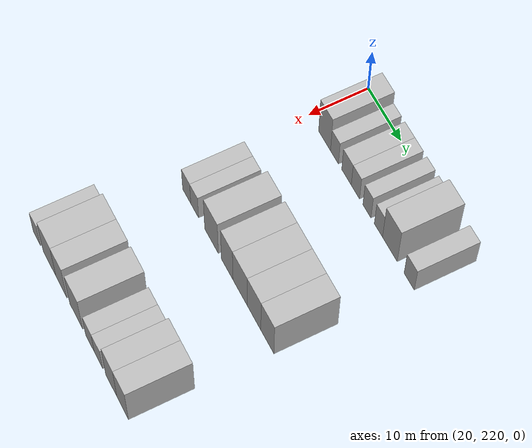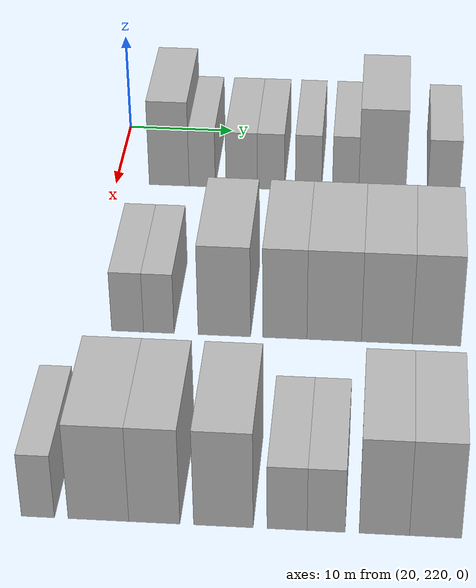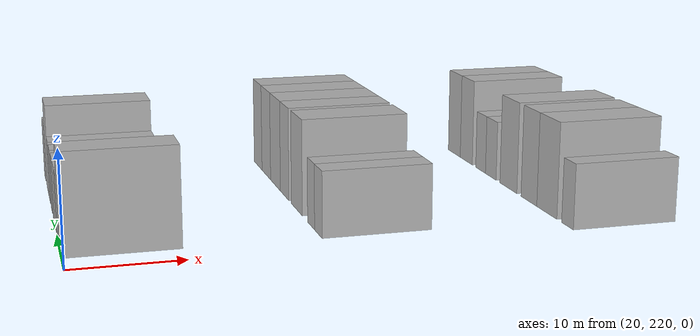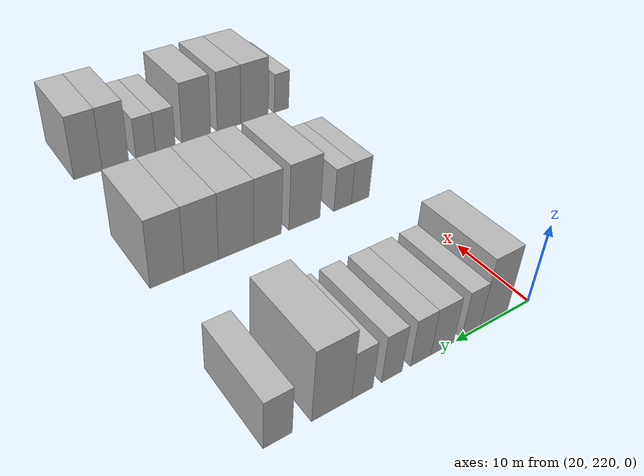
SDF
<sdf version="1.6">
 <world name="default">
  <model name="building_113">
   <static>1</static>
   <pose>25.0000 224.9761 0 0.000000 0.000000 0.000000</pose>
   <link name="link">
    <pose>0 0 4.50 0 0 0</pose>
    <collision name="collision"><geometry><box><size>10.0000 3.7221 9.0000</size></box></geometry></collision>
    <visual name="visual">
     <cast_shadows>0</cast_shadows>
     <geometry><box><size>10.0000 3.7221 9.0000</size></box></geometry>
     <material>
      <script>
       <uri>model://HANNAS_wall/materials/scripts</uri>
       <uri>model://HANNAS_wall/materials/textures</uri>
       <name>vrc/HANNAS_wall</name>
      </script>
     </material>
    </visual>
   </link>
  </model>
  <model name="building_114">
   <static>1</static>
   <pose>25.0000 228.0611 0 0.000000 0.000000 0.000000</pose>
   <link name="link">
    <pose>0 0 3.00 0 0 0</pose>
    <collision name="collision"><geometry><box><size>10.0000 2.4479 6.0000</size></box></geometry></collision>
    <visual name="visual">
     <cast_shadows>0</cast_shadows>
     <geometry><box><size>10.0000 2.4479 6.0000</size></box></geometry>
     <material>
      <script>
       <uri>model://HANNAS_wall/materials/scripts</uri>
       <uri>model://HANNAS_wall/materials/textures</uri>
       <name>vrc/HANNAS_wall</name>
      </script>
     </material>
    </visual>
   </link>
  </model>
  <model name="building_115">
   <static>1</static>
   <pose>25.0000 231.7471 0 0.000000 0.000000 0.000000</pose>
   <link name="link">
    <pose>0 0 3.00 0 0 0</pose>
    <collision name="collision"><geometry><box><size>10.0000 2.9241 6.0000</size></box></geometry></collision>
    <visual name="visual">
     <cast_shadows>0</cast_shadows>
     <geometry><box><size>10.0000 2.9241 6.0000</size></box></geometry>
     <material>
      <script>
       <uri>model://HANNAS_wall/materials/scripts</uri>
       <uri>model://HANNAS_wall/materials/textures</uri>
       <name>vrc/HANNAS_wall</name>
      </script>
     </material>
    </visual>
   </link>
  </model>
  <model name="building_116">
   <static>1</static>
   <pose>25.0000 234.4664 0 0.000000 0.000000 0.000000</pose>
   <link name="link">
    <pose>0 0 3.00 0 0 0</pose>
    <collision name="collision"><geometry><box><size>10.0000 2.5145 6.0000</size></box></geometry></collision>
    <visual name="visual">
     <cast_shadows>0</cast_shadows>
     <geometry><box><size>10.0000 2.5145 6.0000</size></box></geometry>
     <material>
      <script>
       <uri>model://HANNAS_wall/materials/scripts</uri>
       <uri>model://HANNAS_wall/materials/textures</uri>
       <name>vrc/HANNAS_wall</name>
      </script>
     </material>
    </visual>
   </link>
  </model>
  <model name="building_117">
   <static>1</static>
   <pose>25.0000 237.9438 0 0.000000 0.000000 0.000000</pose>
   <link name="link">
    <pose>0 0 3.00 0 0 0</pose>
    <collision name="collision"><geometry><box><size>10.0000 2.4401 6.0000</size></box></geometry></collision>
    <visual name="visual">
     <cast_shadows>0</cast_shadows>
     <geometry><box><size>10.0000 2.4401 6.0000</size></box></geometry>
     <material>
      <script>
       <uri>model://HANNAS_wall/materials/scripts</uri>
       <uri>model://HANNAS_wall/materials/textures</uri>
       <name>vrc/HANNAS_wall</name>
      </script>
     </material>
    </visual>
   </link>
  </model>
  <model name="building_118">
   <static>1</static>
   <pose>25.0000 241.3798 0 0.000000 0.000000 0.000000</pose>
   <link name="link">
    <pose>0 0 3.00 0 0 0</pose>
    <collision name="collision"><geometry><box><size>10.0000 2.4320 6.0000</size></box></geometry></collision>
    <visual name="visual">
     <cast_shadows>0</cast_shadows>
     <geometry><box><size>10.0000 2.4320 6.0000</size></box></geometry>
     <material>
      <script>
       <uri>model://HANNAS_wall/materials/scripts</uri>
       <uri>model://HANNAS_wall/materials/textures</uri>
       <name>vrc/HANNAS_wall</name>
      </script>
     </material>
    </visual>
   </link>
  </model>
  <model name="building_119">
   <static>1</static>
   <pose>25.0000 244.7670 0 0.000000 0.000000 0.000000</pose>
   <link name="link">
    <pose>0 0 4.50 0 0 0</pose>
    <collision name="collision"><geometry><box><size>10.0000 4.3424 9.0000</size></box></geometry></collision>
    <visual name="visual">
     <cast_shadows>0</cast_shadows>
     <geometry><box><size>10.0000 4.3424 9.0000</size></box></geometry>
     <material>
      <script>
       <uri>model://HANNAS_wall/materials/scripts</uri>
       <uri>model://HANNAS_wall/materials/textures</uri>
       <name>vrc/HANNAS_wall</name>
      </script>
     </material>
    </visual>
   </link>
  </model>
  <model name="building_120">
   <static>1</static>
   <pose>25.0000 250.4165 0 0.000000 0.000000 0.000000</pose>
   <link name="link">
    <pose>0 0 3.00 0 0 0</pose>
    <collision name="collision"><geometry><box><size>10.0000 2.9567 6.0000</size></box></geometry></collision>
    <visual name="visual">
     <cast_shadows>0</cast_shadows>
     <geometry><box><size>10.0000 2.9567 6.0000</size></box></geometry>
     <material>
      <script>
       <uri>model://HANNAS_wall/materials/scripts</uri>
       <uri>model://HANNAS_wall/materials/textures</uri>
       <name>vrc/HANNAS_wall</name>
      </script>
     </material>
    </visual>
   </link>
  </model>
  <model name="building_232">
   <static>1</static>
   <pose>47.0000 224.1039 0 0.000000 0.000000 0.000000</pose>
   <link name="link">
    <pose>0 0 3.00 0 0 0</pose>
    <collision name="collision"><geometry><box><size>10.0000 2.6592 6.0000</size></box></geometry></collision>
    <visual name="visual">
     <cast_shadows>0</cast_shadows>
     <geometry><box><size>10.0000 2.6592 6.0000</size></box></geometry>
     <material>
      <script>
       <uri>model://HANNAS_wall/materials/scripts</uri>
       <uri>model://HANNAS_wall/materials/textures</uri>
       <name>vrc/HANNAS_wall</name>
      </script>
     </material>
    </visual>
   </link>
  </model>
  <model name="building_233">
   <static>1</static>
   <pose>47.0000 226.7064 0 0.000000 0.000000 0.000000</pose>
   <link name="link">
    <pose>0 0 3.00 0 0 0</pose>
    <collision name="collision"><geometry><box><size>10.0000 2.5457 6.0000</size></box></geometry></collision>
    <visual name="visual">
     <cast_shadows>0</cast_shadows>
     <geometry><box><size>10.0000 2.5457 6.0000</size></box></geometry>
     <material>
      <script>
       <uri>model://HANNAS_wall/materials/scripts</uri>
       <uri>model://HANNAS_wall/materials/textures</uri>
       <name>vrc/HANNAS_wall</name>
      </script>
     </material>
    </visual>
   </link>
  </model>
  <model name="building_234">
   <static>1</static>
   <pose>47.0000 232.1531 0 0.000000 0.000000 0.000000</pose>
   <link name="link">
    <pose>0 0 4.50 0 0 0</pose>
    <collision name="collision"><geometry><box><size>10.0000 4.3476 9.0000</size></box></geometry></collision>
    <visual name="visual">
     <cast_shadows>0</cast_shadows>
     <geometry><box><size>10.0000 4.3476 9.0000</size></box></geometry>
     <material>
      <script>
       <uri>model://HANNAS_wall/materials/scripts</uri>
       <uri>model://HANNAS_wall/materials/textures</uri>
       <name>vrc/HANNAS_wall</name>
      </script>
     </material>
    </visual>
   </link>
  </model>
  <model name="building_235">
   <static>1</static>
   <pose>47.0000 237.1515 0 0.000000 0.000000 0.000000</pose>
   <link name="link">
    <pose>0 0 4.50 0 0 0</pose>
    <collision name="collision"><geometry><box><size>10.0000 3.6492 9.0000</size></box></geometry></collision>
    <visual name="visual">
     <cast_shadows>0</cast_shadows>
     <geometry><box><size>10.0000 3.6492 9.0000</size></box></geometry>
     <material>
      <script>
       <uri>model://HANNAS_wall/materials/scripts</uri>
       <uri>model://HANNAS_wall/materials/textures</uri>
       <name>vrc/HANNAS_wall</name>
      </script>
     </material>
    </visual>
   </link>
  </model>
  <model name="building_236">
   <static>1</static>
   <pose>47.0000 241.2204 0 0.000000 0.000000 0.000000</pose>
   <link name="link">
    <pose>0 0 4.50 0 0 0</pose>
    <collision name="collision"><geometry><box><size>10.0000 4.4886 9.0000</size></box></geometry></collision>
    <visual name="visual">
     <cast_shadows>0</cast_shadows>
     <geometry><box><size>10.0000 4.4886 9.0000</size></box></geometry>
     <material>
      <script>
       <uri>model://HANNAS_wall/materials/scripts</uri>
       <uri>model://HANNAS_wall/materials/textures</uri>
       <name>vrc/HANNAS_wall</name>
      </script>
     </material>
    </visual>
   </link>
  </model>
  <model name="building_237">
   <static>1</static>
   <pose>47.0000 245.5415 0 0.000000 0.000000 0.000000</pose>
   <link name="link">
    <pose>0 0 4.50 0 0 0</pose>
    <collision name="collision"><geometry><box><size>10.0000 4.1536 9.0000</size></box></geometry></collision>
    <visual name="visual">
     <cast_shadows>0</cast_shadows>
     <geometry><box><size>10.0000 4.1536 9.0000</size></box></geometry>
     <material>
      <script>
       <uri>model://HANNAS_wall/materials/scripts</uri>
       <uri>model://HANNAS_wall/materials/textures</uri>
       <name>vrc/HANNAS_wall</name>
      </script>
     </material>
    </visual>
   </link>
  </model>
  <model name="building_238">
   <static>1</static>
   <pose>47.0000 249.6087 0 0.000000 0.000000 0.000000</pose>
   <link name="link">
    <pose>0 0 4.50 0 0 0</pose>
    <collision name="collision"><geometry><box><size>10.0000 3.9807 9.0000</size></box></geometry></collision>
    <visual name="visual">
     <cast_shadows>0</cast_shadows>
     <geometry><box><size>10.0000 3.9807 9.0000</size></box></geometry>
     <material>
      <script>
       <uri>model://HANNAS_wall/materials/scripts</uri>
       <uri>model://HANNAS_wall/materials/textures</uri>
       <name>vrc/HANNAS_wall</name>
      </script>
     </material>
    </visual>
   </link>
  </model>
  <model name="building_354">
   <static>1</static>
   <pose>69.0000 220.5763 0 0.000000 0.000000 0.000000</pose>
   <link name="link">
    <pose>0 0 3.00 0 0 0</pose>
    <collision name="collision"><geometry><box><size>10.0000 2.4282 6.0000</size></box></geometry></collision>
    <visual name="visual">
     <cast_shadows>0</cast_shadows>
     <geometry><box><size>10.0000 2.4282 6.0000</size></box></geometry>
     <material>
      <script>
       <uri>model://HANNAS_wall/materials/scripts</uri>
       <uri>model://HANNAS_wall/materials/textures</uri>
       <name>vrc/HANNAS_wall</name>
      </script>
     </material>
    </visual>
   </link>
  </model>
  <model name="building_355">
   <static>1</static>
   <pose>69.0000 225.0092 0 0.000000 0.000000 0.000000</pose>
   <link name="link">
    <pose>0 0 4.50 0 0 0</pose>
    <collision name="collision"><geometry><box><size>10.0000 4.4375 9.0000</size></box></geometry></collision>
    <visual name="visual">
     <cast_shadows>0</cast_shadows>
     <geometry><box><size>10.0000 4.4375 9.0000</size></box></geometry>
     <material>
      <script>
       <uri>model://HANNAS_wall/materials/scripts</uri>
       <uri>model://HANNAS_wall/materials/textures</uri>
       <name>vrc/HANNAS_wall</name>
      </script>
     </material>
    </visual>
   </link>
  </model>
  <model name="building_356">
   <static>1</static>
   <pose>69.0000 229.0893 0 0.000000 0.000000 0.000000</pose>
   <link name="link">
    <pose>0 0 4.50 0 0 0</pose>
    <collision name="collision"><geometry><box><size>10.0000 3.7227 9.0000</size></box></geometry></collision>
    <visual name="visual">
     <cast_shadows>0</cast_shadows>
     <geometry><box><size>10.0000 3.7227 9.0000</size></box></geometry>
     <material>
      <script>
       <uri>model://HANNAS_wall/materials/scripts</uri>
       <uri>model://HANNAS_wall/materials/textures</uri>
       <name>vrc/HANNAS_wall</name>
      </script>
     </material>
    </visual>
   </link>
  </model>
  <model name="building_357">
   <static>1</static>
   <pose>69.0000 234.1087 0 0.000000 0.000000 0.000000</pose>
   <link name="link">
    <pose>0 0 4.50 0 0 0</pose>
    <collision name="collision"><geometry><box><size>10.0000 4.3161 9.0000</size></box></geometry></collision>
    <visual name="visual">
     <cast_shadows>0</cast_shadows>
     <geometry><box><size>10.0000 4.3161 9.0000</size></box></geometry>
     <material>
      <script>
       <uri>model://HANNAS_wall/materials/scripts</uri>
       <uri>model://HANNAS_wall/materials/textures</uri>
       <name>vrc/HANNAS_wall</name>
      </script>
     </material>
    </visual>
   </link>
  </model>
  <model name="building_358">
   <static>1</static>
   <pose>69.0000 238.7160 0 0.000000 0.000000 0.000000</pose>
   <link name="link">
    <pose>0 0 3.00 0 0 0</pose>
    <collision name="collision"><geometry><box><size>10.0000 2.8986 6.0000</size></box></geometry></collision>
    <visual name="visual">
     <cast_shadows>0</cast_shadows>
     <geometry><box><size>10.0000 2.8986 6.0000</size></box></geometry>
     <material>
      <script>
       <uri>model://HANNAS_wall/materials/scripts</uri>
       <uri>model://HANNAS_wall/materials/textures</uri>
       <name>vrc/HANNAS_wall</name>
      </script>
     </material>
    </visual>
   </link>
  </model>
  <model name="building_359">
   <static>1</static>
   <pose>69.0000 241.5373 0 0.000000 0.000000 0.000000</pose>
   <link name="link">
    <pose>0 0 3.00 0 0 0</pose>
    <collision name="collision"><geometry><box><size>10.0000 2.7439 6.0000</size></box></geometry></collision>
    <visual name="visual">
     <cast_shadows>0</cast_shadows>
     <geometry><box><size>10.0000 2.7439 6.0000</size></box></geometry>
     <material>
      <script>
       <uri>model://HANNAS_wall/materials/scripts</uri>
       <uri>model://HANNAS_wall/materials/textures</uri>
       <name>vrc/HANNAS_wall</name>
      </script>
     </material>
    </visual>
   </link>
  </model>
  <model name="building_360">
   <static>1</static>
   <pose>69.0000 245.7164 0 0.000000 0.000000 0.000000</pose>
   <link name="link">
    <pose>0 0 4.50 0 0 0</pose>
    <collision name="collision"><geometry><box><size>10.0000 3.6144 9.0000</size></box></geometry></collision>
    <visual name="visual">
     <cast_shadows>0</cast_shadows>
     <geometry><box><size>10.0000 3.6144 9.0000</size></box></geometry>
     <material>
      <script>
       <uri>model://HANNAS_wall/materials/scripts</uri>
       <uri>model://HANNAS_wall/materials/textures</uri>
       <name>vrc/HANNAS_wall</name>
      </script>
     </material>
    </visual>
   </link>
  </model>
  <model name="building_361">
   <static>1</static>
   <pose>69.0000 249.3914 0 0.000000 0.000000 0.000000</pose>
   <link name="link">
    <pose>0 0 4.50 0 0 0</pose>
    <collision name="collision"><geometry><box><size>10.0000 3.7356 9.0000</size></box></geometry></collision>
    <visual name="visual">
     <cast_shadows>0</cast_shadows>
     <geometry><box><size>10.0000 3.7356 9.0000</size></box></geometry>
     <material>
      <script>
       <uri>model://HANNAS_wall/materials/scripts</uri>
       <uri>model://HANNAS_wall/materials/textures</uri>
       <name>vrc/HANNAS_wall</name>
      </script>
     </material>
    </visual>
   </link>
  </model>
 </world>
</sdf>
